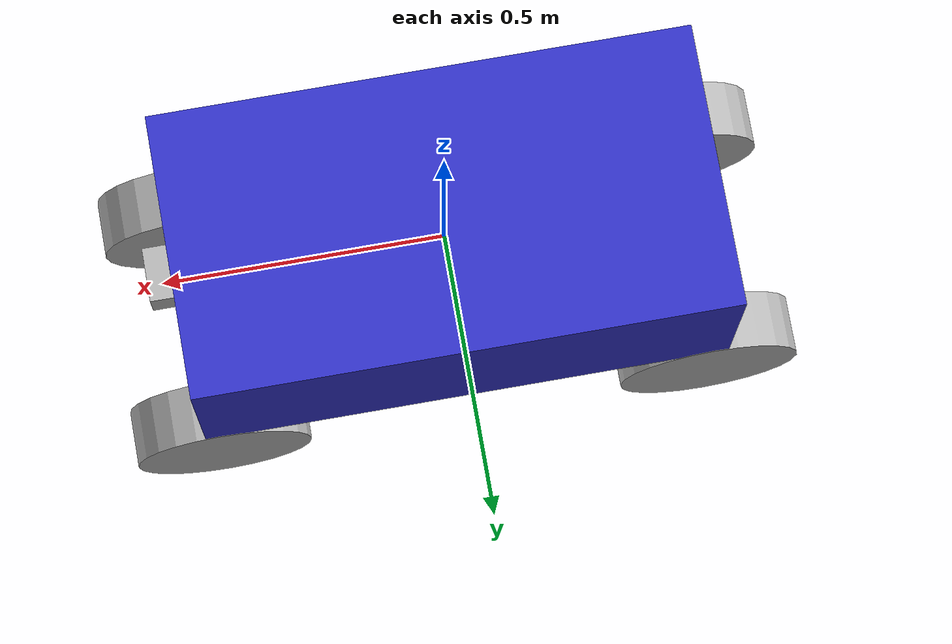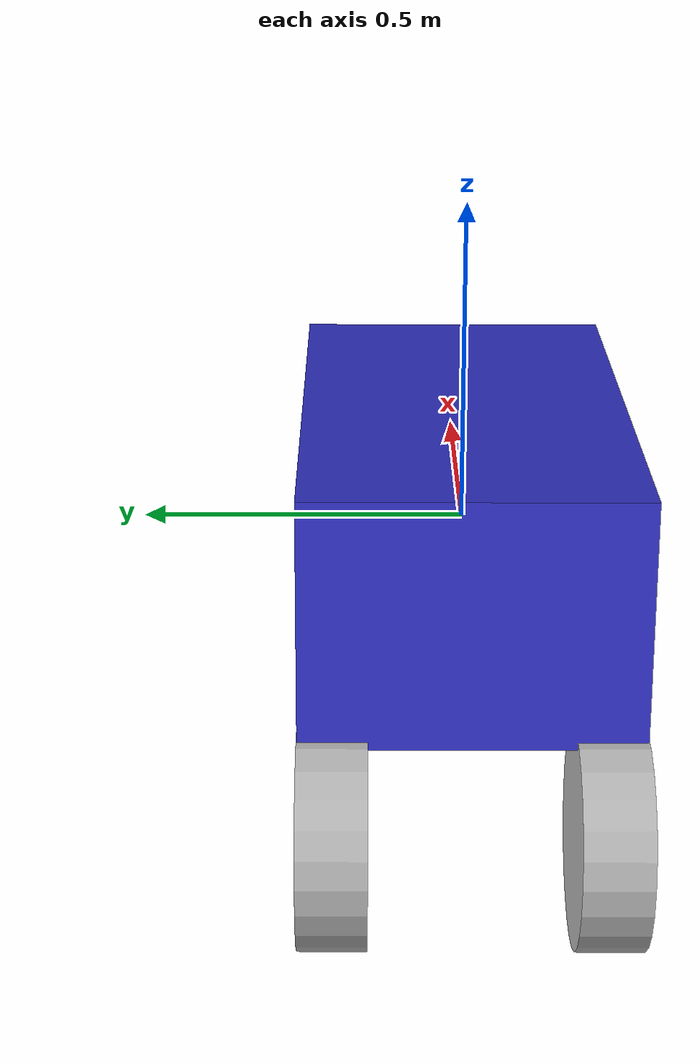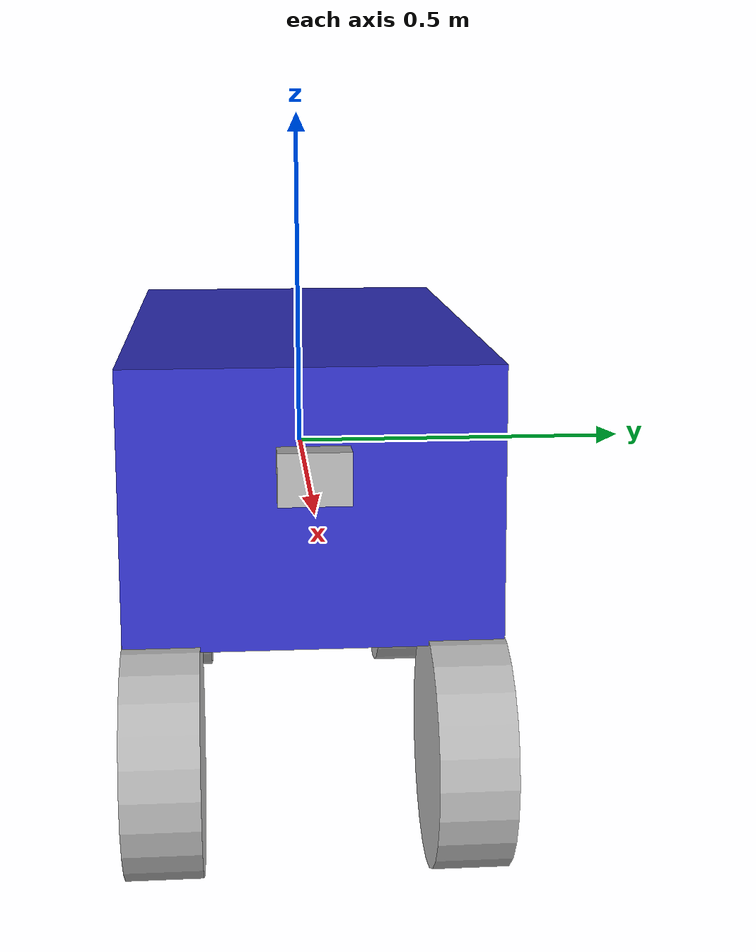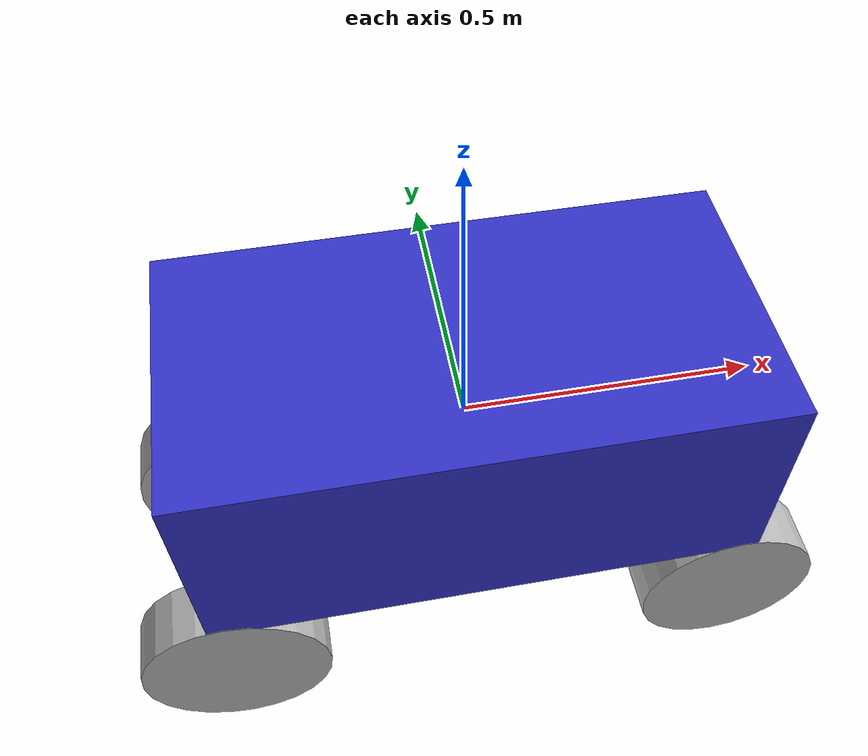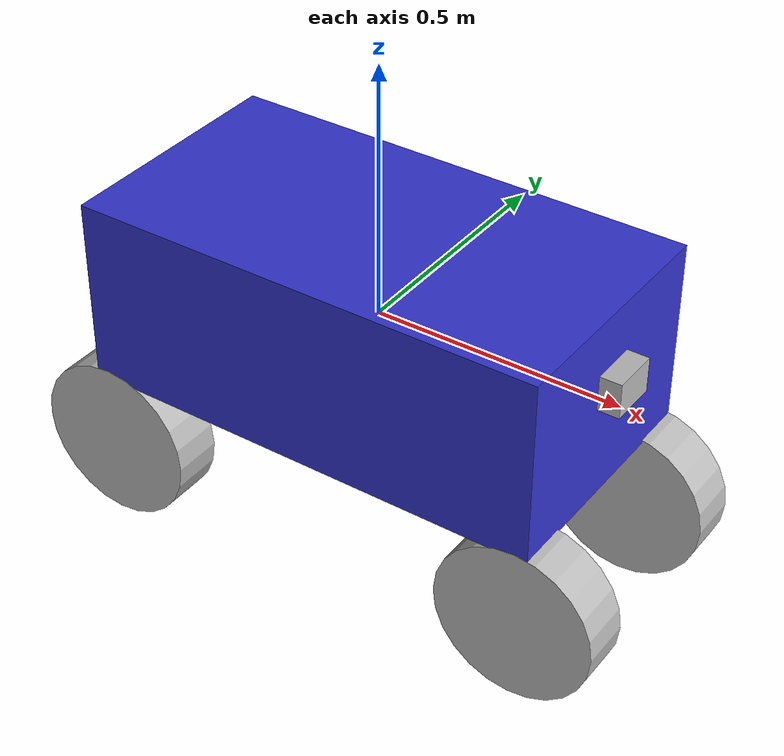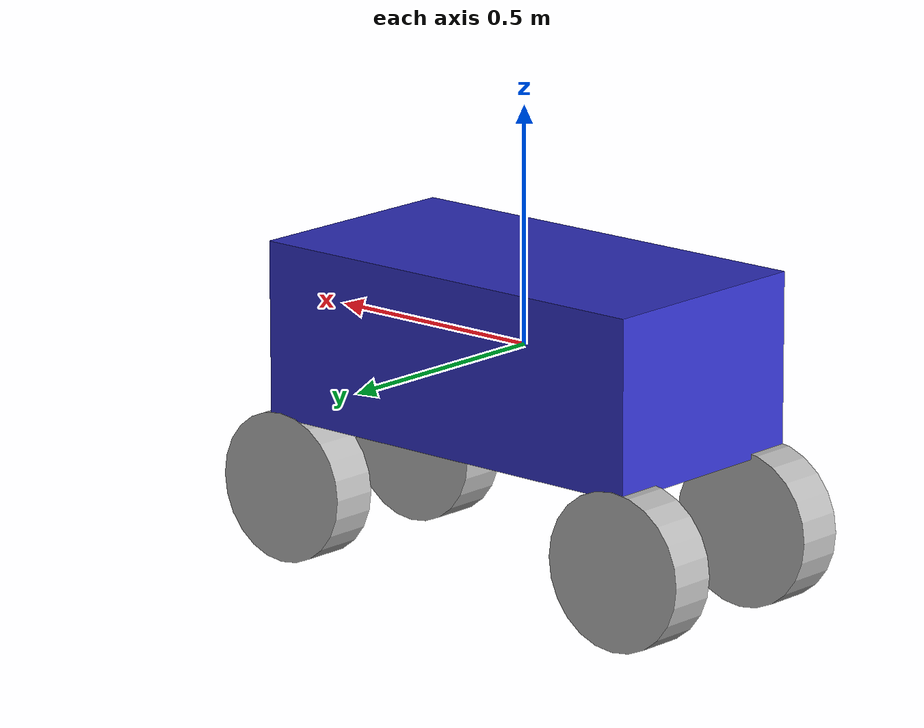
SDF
<?xml version="1.0" ?>
<sdf version="1.9">
  <model name="rev4">
    <static>false</static>

    <!-- ================= DRIVING, STEERING, IMU ================= -->
    <plugin
      filename="libignition-gazebo-diff-drive-system.so"
      name="ignition::gazebo::systems::DiffDrive">

      <left_joint>joint_rl</left_joint>
      <right_joint>joint_rr</right_joint>

      <wheel_separation>0.35</wheel_separation>
      <wheel_radius>0.16</wheel_radius>

      <topic>/cmd_vel</topic>
      <odom_topic>/odom</odom_topic>
      <frame_id>odom</frame_id>
      <child_frame_id>base_link</child_frame_id>
    </plugin>

    <plugin
      filename="ignition-gazebo-joint-position-controller-system"
      name="ignition::gazebo::systems::JointPositionController">
      <joint_name>joint_fl_steer</joint_name>
      <topic>/steer_fl</topic>
      <p_gain>100</p_gain>
      <i_gain>0.1</i_gain>
      <d_gain>1.0</d_gain>
    </plugin>

    <plugin
      filename="ignition-gazebo-joint-position-controller-system"
      name="ignition::gazebo::systems::JointPositionController">
      <joint_name>joint_fr_steer</joint_name>
      <topic>/steer_fr</topic>
      <p_gain>100</p_gain>
      <i_gain>0.1</i_gain>
      <d_gain>1.0</d_gain>
    </plugin>

    <plugin filename="gz-sim-imu-system" name="gz::sim::systems::Imu"/>

    <!-- ================= BASE ================= -->
    <link name="base_link">
      <pose>0 0 0 0 0 0</pose>
      <inertial>
        <mass>136.0</mass>
        <inertia>
          <ixx>0.2</ixx>
          <iyy>0.2</iyy>
          <izz>0.2</izz>
        </inertia>
      </inertial>

      <collision name="base_collision">
        <geometry>
          <box>
            <size>0.95084 0.500 0.37214</size>
          </box>
        </geometry>
      </collision>

      <visual name="base_visual">
        <geometry>
          <box>
            <size>0.95084 0.500 0.37214</size>
          </box>
        </geometry>
        <material>
          <ambient>0.2 0.2 0.8 1</ambient>
          <diffuse>0.2 0.2 0.8 1</diffuse>
        </material>
      </visual>

      <sensor name="imu_sensor" type="imu">
        <always_on>true</always_on>
        <update_rate>100</update_rate>
        <topic>/imu</topic>
      </sensor>
    </link>

    <!-- ================= STEERING KNUCKLES ================= -->
    <link name="steering_fl"/>
    <link name="steering_fr"/>

    <!-- ================= LIDAR ================= -->
    <link name="lidar_link">
      <pose>0.50 0 0.05 0 0 0</pose>

      <visual name="lidar_visual">
        <geometry>
          <box>
             <size>0.043 0.095 0.0695</size>
          </box>
        </geometry>
      </visual>

      <sensor name="gpu_lidar" type="gpu_lidar">
        <topic>/scan</topic>
        <update_rate>10</update_rate>
        <always_on>true</always_on>
        <visualize>true</visualize>

        <lidar>
          <scan>
            <horizontal>
              <samples>180</samples>
              <min_angle>-1.0472</min_angle>
              <max_angle>1.0472</max_angle>
            </horizontal>

            <vertical>
              <samples>144</samples>
              <min_angle>-0.7854</min_angle>
              <max_angle>0.7854</max_angle>
            </vertical>
          </scan>
          <range>
            <min>0.1</min>
            <max>75.0</max>
          </range>
        </lidar>
      </sensor>
    </link>

    <!-- ================= WHEELS ================= -->
    <link name="wheel_fl">
      <pose>0.45 0.2 -0.336 0 1.5708 1.5708</pose>
      <inertial><mass>0.2</mass></inertial>
      <collision name="collision">
        <geometry><cylinder><radius>0.16</radius><length>0.1016</length></cylinder></geometry>
      </collision>
      <visual name="visual">
        <geometry><cylinder><radius>0.16</radius><length>0.1016</length></cylinder></geometry>
      </visual>
    </link>

    <link name="wheel_fr">
      <pose>0.45 -0.2 -0.336 0 1.5708 1.5708</pose>
      <inertial><mass>0.2</mass></inertial>
      <collision name="collision">
        <geometry><cylinder><radius>0.16</radius><length>0.1016</length></cylinder></geometry>
      </collision>
      <visual name="visual">
        <geometry><cylinder><radius>0.16</radius><length>0.1016</length></cylinder></geometry>
      </visual>
    </link>

    <link name="wheel_rl">
      <pose>-0.45 0.2 -0.336 0 1.5708 1.5708</pose>
      <inertial><mass>0.2</mass></inertial>
      <collision name="collision">
        <geometry><cylinder><radius>0.165</radius><length>0.102</length></cylinder></geometry>
      </collision>
      <visual name="visual">
        <geometry><cylinder><radius>0.165</radius><length>0.102</length></cylinder></geometry>
      </visual>
    </link>

    <link name="wheel_rr">
      <pose>-0.45 -0.2 -0.336 0 1.5708 1.5708</pose>
      <inertial><mass>0.2</mass></inertial>
      <collision name="collision">
        <geometry><cylinder><radius>0.165</radius><length>0.102</length></cylinder></geometry>
      </collision>
      <visual name="visual">
        <geometry><cylinder><radius>0.165</radius><length>0.102</length></cylinder></geometry>
      </visual>
    </link>

    <!-- ================= JOINTS ================= -->

    <!-- Steering joints -->
    <joint name="joint_fl_steer" type="revolute">
      <pose>0.45 0.275 -0.136 0 0 0</pose>
      <gravity>false</gravity>
      <parent>base_link</parent>
      <child>steering_fl</child>
      <axis><xyz>0 0 1</xyz></axis>
    </joint>

    <joint name="joint_fr_steer" type="revolute">
      <pose>0.45 -0.275 -0.136 0 0 0</pose>
      <gravity>false</gravity>
      <parent>base_link</parent>
      <child>steering_fr</child>
      <axis><xyz>0 0 1</xyz></axis>
    </joint>

    <!-- Front wheel roll -->
    <joint name="joint_fl" type="revolute">
      <parent>steering_fl</parent>
      <child>wheel_fl</child>
      <axis><xyz>0 0 1</xyz></axis>
    </joint>

    <joint name="joint_fr" type="revolute">
      <parent>steering_fr</parent>
      <child>wheel_fr</child>
      <axis><xyz>0 0 1</xyz></axis>
    </joint>

    <!-- Rear wheel roll -->
    <joint name="joint_rl" type="revolute">
      <parent>base_link</parent>
      <child>wheel_rl</child>
      <axis><xyz>0 0 1</xyz></axis>
    </joint>

    <joint name="joint_rr" type="revolute">
      <parent>base_link</parent>
      <child>wheel_rr</child>
      <axis><xyz>0 0 1</xyz></axis>
    </joint>

    <joint name="lidar_joint" type="fixed">
      <parent>base_link</parent>
      <child>lidar_link</child>
    </joint>

  </model>
</sdf>
